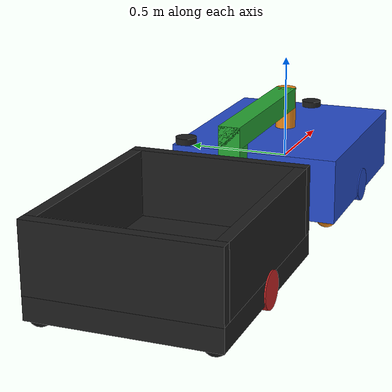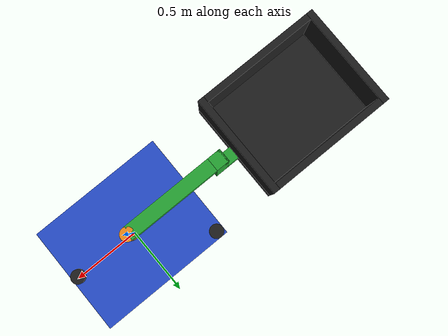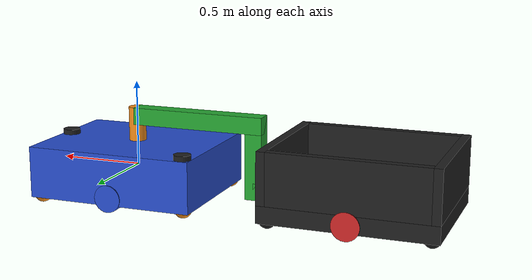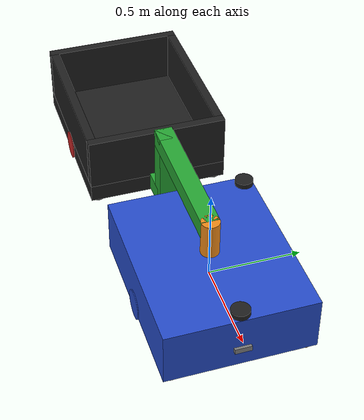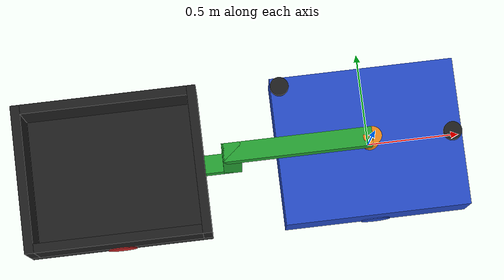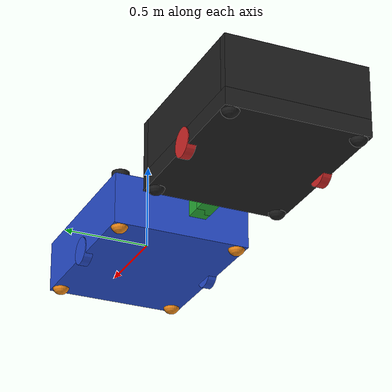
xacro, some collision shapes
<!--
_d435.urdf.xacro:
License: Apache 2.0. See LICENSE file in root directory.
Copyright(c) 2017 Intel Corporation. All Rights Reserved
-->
<?xml version='1.0'?>

<robot name="amr_dd" xmlns:xacro="http://www.ros.org/wiki/xacro">

    <xacro:include filename="$(find amr_dd)/models/materials.xacro" />
    <xacro:include filename="$(find amr_dd)/models/amr_dd.gazebo" />
    <xacro:include filename="$(find amr_dd)/models/macros.xacro" />
    <xacro:include filename="$(find amr_dd)/urdf/_d435.urdf.xacro" />

    <link name="base_footprint"/>

    <joint name="base_joint" type="fixed">
        <parent link="base_footprint"/>
        <child link="chassis"/>
        <origin xyz="0.0 0.0 0.0" rpy="0 0 0"/>
    </joint>

    <link name='chassis'>
        <!-- pose and inertial -->
        <pose>0 0 0.185 0 0 0</pose>
        <inertial>
            <mass value="120"/>
            <origin rpy="0 0 0" xyz="0 0 0.185"/>
            <inertia ixx="0.0395416666667" ixy="0" ixz="0" iyy="0.106208333333" iyz="0" izz="0.106208333333"/>
        </inertial>

        <!-- body -->
        <collision name='chassis_collision'>
            <geometry>
                <box size="1 0.8 0.3"/>
            </geometry>
        </collision>
        <visual name='chassis_visual'>
            <origin rpy="0 0 0" xyz="0 0 0"/>
            <geometry>
                <box size="1 0.8 0.3"/>
            </geometry>
            <material name="blue"/>
        </visual>

        <!-- caster -->
        <xacro:caster name="caster_TL" origin_xyz="0.45 0.35 -0.135"/>
        <xacro:caster name="caster_TR" origin_xyz="0.45 -0.35 -0.135"/>
        <xacro:caster name="caster_BL" origin_xyz="-0.45 0.35 -0.135"/>
        <xacro:caster name="caster_BR" origin_xyz="-0.45 -0.35 -0.135"/>

        <collision name='poll_collision'>
            <origin rpy="0 0 0" xyz="0 0 0.25"/>
            <geometry>
                <cylinder radius="0.05" length="0.2"/>
            </geometry>
        </collision>
        <visual name='poll_visual'>
            <origin rpy="0 0 0" xyz="0 0 0.25"/>
            <geometry>
                <cylinder radius="0.05" length="0.2"/>
            </geometry>
        </visual>

    </link>

    <!-- Hook -->
    <link name="hook">
        <inertial>
            <mass value="0.5"/>
            <origin rpy="0 0 0" xyz="-0.4 0 0.3"/>
            <inertia ixx="0.0395416666667" ixy="0" ixz="0" iyy="0.106208333333" iyz="0" izz="0.106208333333"/>
        </inertial>
        <collision name='hook1_collision'>
            <origin rpy="0 0 0" xyz="-0.4 0 0.3"/>
            <geometry>
                <box size="0.8 0.1 0.1"/>
            </geometry>
        </collision>
        <visual name='hook1_visual'>
            <origin rpy="0 0 0" xyz="-0.4 0 0.3"/>
            <geometry>
                <box size="0.8 0.1 0.1"/>
            </geometry>
        </visual>
        <collision name='hook2_collision'>
            <origin rpy="0 0 0" xyz="-0.75 0 0.1075"/>
            <geometry>
                <box size="0.1 0.1 0.485"/>
            </geometry>
        </collision>
        <visual name='hook2_visual'>
            <origin rpy="0 0 0" xyz="-0.75 0 0.1075"/>
            <geometry>
                <box size="0.1 0.1 0.485"/>
            </geometry>
        </visual>
        <collision name='hook3_collision'>
            <origin rpy="0 0 0" xyz="-0.825 0 -0.085"/>
            <geometry>
                <box size="0.15 0.1 0.1"/>
            </geometry>
        </collision>
        <visual name='hook3_visual'>
            <origin rpy="0 0 0" xyz="-0.825 0 -0.085"/>
            <geometry>
                <box size="0.15 0.1 0.1"/>
            </geometry>
        </visual>
    </link>
    <!-- AMR Wheel -->
    <xacro:link_wheel name="left_wheel" />
    <gazebo reference="left_wheel">
        <mu1>100000.0</mu1>
        <mu2>100000.0</mu2>
        <kp>1000000.0</kp>
        <kd>100.0</kd>
        <minDepth>0.001</minDepth>
        <maxVel>1.0</maxVel>
    </gazebo>
    <xacro:link_wheel name="right_wheel" />
    <gazebo reference="right_wheel">
        <mu1>100000.0</mu1>
        <mu2>100000.0</mu2>
        <kp>1000000.0</kp>
        <kd>100.0</kd>
        <minDepth>0.001</minDepth>
        <maxVel>1.0</maxVel>
    </gazebo>

    <!-- Cart -->
    <link name="cart">
        <inertial>
            <mass value="10"/>
            <origin rpy="0 0 0" xyz="-1.4 0 -0.1"/>
            <inertia ixx="0.0395416666667" ixy="0" ixz="0" iyy="0.106208333333" iyz="0" izz="0.106208333333"/>
        </inertial>

        <!-- body -->
        <collision name='cart_collision'>
            <origin rpy="0 0 0" xyz="-1.4 0 -0.1"/>
            <geometry>
                <box size="1 0.8 0.1"/>
            </geometry>
        </collision>
        <visual name='cart_visual'>
            <origin rpy="0 0 0" xyz="-1.4 0 -0.1"/>
            <geometry>
                <box size="1 0.8 0.1"/>
            </geometry>
        </visual>
        <collision name='wall1_collision'>
            <origin rpy="0 0 0" xyz="-0.925 0 0.1"/>
            <geometry>
                <box size="0.05 0.8 0.3"/>
            </geometry>
        </collision>
        <visual name='wall1_visual'>
            <origin rpy="0 0 0" xyz="-0.925 0 0.1"/>
            <geometry>
                <box size="0.05 0.8 0.3"/>
            </geometry>
        </visual>
        <collision name='wall2_collision'>
            <origin rpy="0 0 0" xyz="-1.875 0 0.1"/>
            <geometry>
                <box size="0.05 0.8 0.3"/>
            </geometry>
        </collision>
        <visual name='wall2_visual'>
            <origin rpy="0 0 0" xyz="-1.875 0 0.1"/>
            <geometry>
                <box size="0.05 0.8 0.3"/>
            </geometry>
        </visual>
        <collision name='wall3_collision'>
            <origin rpy="0 0 0" xyz="-1.4 0.375 0.1"/>
            <geometry>
                <box size="0.9 0.05 0.3"/>
            </geometry>
        </collision>
        <visual name='wall3_visual'>
            <origin rpy="0 0 0" xyz="-1.4 0.375 0.1"/>
            <geometry>
                <box size="0.9 0.05 0.3"/>
            </geometry>
        </visual>
        <collision name='wall4_collision'>
            <origin rpy="0 0 0" xyz="-1.4 -0.375 0.1"/>
            <geometry>
                <box size="0.9 0.05 0.3"/>
            </geometry>
        </collision>
        <visual name='wall4_visual'>
            <origin rpy="0 0 0" xyz="-1.4 -0.375 0.1"/>
            <geometry>
                <box size="0.9 0.05 0.3"/>
            </geometry>
        </visual>

        <!-- caster -->
        <xacro:caster name="cart_caster_TL" origin_xyz="-0.95 0.35 -0.135"/>
        <xacro:caster name="cart_caster_TR" origin_xyz="-0.95 -0.35 -0.135"/>
        <xacro:caster name="cart_caster_BL" origin_xyz="-1.85 0.35 -0.135"/>
        <xacro:caster name="cart_caster_BR" origin_xyz="-1.85 -0.35 -0.135"/>
    </link>
    <!-- Cart Wheel -->
    <xacro:link_wheel name="left_cart_wheel" />
    <gazebo reference="left_cart_wheel">
        <mu1>100000.0</mu1>
        <mu2>100000.0</mu2>
        <kp>1000000.0</kp>
        <kd>100.0</kd>
        <minDepth>0.001</minDepth>
        <maxVel>1.0</maxVel>
    </gazebo>
    <xacro:link_wheel name="right_cart_wheel" />
    <gazebo reference="right_cart_wheel">
        <mu1>100000.0</mu1>
        <mu2>100000.0</mu2>
        <kp>1000000.0</kp>
        <kd>100.0</kd>
        <minDepth>0.001</minDepth>
        <maxVel>1.0</maxVel>
    </gazebo>

    <!-- Sensor -->
    <xacro:laser name="sensor_laser_front"/>
    <xacro:laser name="sensor_laser_back"/>

    <xacro:sensor_d435 name="camera" topics_ns="camera" parent="chassis" publish_pointcloud="true">
        <origin xyz="0.51 0 -0.05" rpy="0 -0.2 0" />
    </xacro:sensor_d435>

    <!-- Joint -->
    <xacro:joint_wheel name="joint_left_wheel" origin_xyz="0 0.38 -0.11" parent="chassis" child="left_wheel"/>
    <xacro:joint_wheel name="joint_right_wheel" origin_xyz="0 -0.38 -0.11" parent="chassis" child="right_wheel"/>
    <joint type="revolute" name="joint_towing">
            <origin rpy="0 0 0" xyz="0 0 0"/>
            <child link="hook"/>
            <parent link="chassis"/>
            <axis rpy="0 0 0" xyz="0 0 1"/>
            <limit effort="10000" velocity="1000" lower="-1.5707" upper="1.5707"/>
            <joint_properties damping="1.0" friction="1.0"/>
        </joint>

    <joint type="fixed" name="joint_hook">
            <origin rpy="0 0 0" xyz="0 0 0"/>
            <child link="cart"/>
            <parent link="hook"/>
            <axis rpy="0 0 0" xyz="0 0 0"/>
        </joint>
    <xacro:joint_wheel name="joint_left_cart_wheel" origin_xyz="-1.4 0.38 -0.11" parent="cart" child="left_cart_wheel"/>
    <xacro:joint_wheel name="joint_right_cart_wheel" origin_xyz="-1.4 -0.38 -0.11" parent="cart" child="right_cart_wheel"/>
    <transmission name="towing_tran">
        <type>transmission_interface/SimpleTransmission</type>
        <joint type="revolute" name="joint_towing">
            <hardwareInterface>hardware_interface/EffortJointInterface</hardwareInterface>
        </joint>
        <actuator name="motor_towing">
            <mechanicalReduction>1</mechanicalReduction>
        </actuator>
    </transmission>
    <joint name="joint_sensor_laser_front" type="fixed">
        <origin xyz="0.45 0 0.165" rpy="0 0 0"/>
        <parent link="chassis"/>
        <child link="sensor_laser_front"/>
    </joint>
    <joint name="joint_sensor_laser_back" type="fixed">
        <origin xyz="-0.45 0.35 0.165" rpy="0 0 3.14"/>
        <parent link="chassis"/>
        <child link="sensor_laser_back"/>
    </joint>
</robot>

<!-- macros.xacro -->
<robot xmlns:xacro="http://www.ros.org/wiki/xacro">
    <!-- Link Wheel -->
    <xacro:macro name="link_wheel" params="name">
        <link name="${name}">
            <inertial>
                <mass value="0.2"/>
                <origin rpy="0 1.5707 1.5707" xyz="0 0 0"/>
                <inertia ixx="0.000526666666667" ixy="0" ixz="0" iyy="0.000526666666667" iyz="0" izz="0.001"/>
            </inertial>
            <collision name="${name}_collision">
                <origin rpy="0 1.5707 1.5707" xyz="0 0 0"/>
                <geometry>
                    <cylinder length="0.05" radius="0.08"/>
                </geometry>
            </collision>
            <visual name="${name}_visual">
                <origin rpy="0 1.5707 1.5707" xyz="0 0 0"/>
                <geometry>
                    <cylinder length="0.05" radius="0.08"/>
                </geometry>
            </visual>
        </link>
    </xacro:macro>
    <!-- Joint Wheel -->
    <xacro:macro name="joint_wheel" params="name parent child origin_xyz">
        <joint type="continuous" name="${name}">
            <origin rpy="0 0 0" xyz="${origin_xyz}"/>
            <child link="${child}"/>
            <parent link="${parent}"/>
            <axis rpy="0 0 0" xyz="0 1 0"/>
            <limit effort="10000" velocity="1000"/>
            <joint_properties damping="1.0" friction="1.0"/>
        </joint>
    </xacro:macro>
    <!-- Caster -->
    <xacro:macro name="caster" params="name origin_xyz">
        <collision name='${name}_collision'>
            <origin rpy="0 0 0" xyz="${origin_xyz}"/>
            <geometry>
                <sphere radius="0.05"/>}
            </geometry>
            <surface>
                <friction>
                    <ode>
                        <mu>0</mu>
                        <mu2>0</mu2>
                        <slip1>1.0</slip1>
                        <slip2>1.0</slip2>
                    </ode>
                </friction>
            </surface>
        </collision>
        <visual name='${name}_visual'>
            <origin rpy="0 0 0" xyz="${origin_xyz}"/>
            <geometry>
                <sphere radius="0.05"/>
            </geometry>
        </visual>
    </xacro:macro>
    <!-- laser -->
    <xacro:macro name="laser" params="name">
        <link name="${name}">
            <inertial>
                <mass value="0.05"/>
                <origin rpy="0 0 0" xyz="0 0 0"/>
                <xacro:cylinder_inertia mass="0.05" l="0.03" r="0.05" />
            </inertial>
            <collision name="${name}_collision">
                <origin rpy="0 0 0" xyz="0 0 0"/>
                <geometry>
                    <cylinder length="0.03" radius="0.05"/>
                </geometry>
            </collision>
            <visual name="${name}_visual">
                <origin rpy="0 0 0" xyz="0 0 0"/>
                <geometry>
                    <cylinder length="0.03" radius="0.05"/>
                </geometry>
            </visual>
        </link>
    </xacro:macro>
    <!-- Inertia -->
    <xacro:macro name="cylinder_inertia" params="mass r l">
        <inertia  ixx="${mass*(3*r*r+l*l)/12}" ixy = "0" ixz = "0"
                    iyy="${mass*(3*r*r+l*l)/12}" iyz = "0"
                    izz="${mass*(r*r)/2}" />
    </xacro:macro>
</robot>

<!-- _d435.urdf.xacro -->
<robot name="sensor_d435" xmlns:xacro="http://ros.org/wiki/xacro">
  <!--File includes-->
  <xacro:include filename="$(find amr_dd)/urdf/_d435.gazebo.xacro"/>

  <xacro:macro name="sensor_d435" params="name:=camera topics_ns:=camera parent *origin publish_pointcloud:=true">
    <xacro:property name="M_PI" value="3.1415926535897931" />

    <!-- The following values are approximate, and the camera node
     publishing TF values with actual calibrated camera extrinsic values -->
    <xacro:property name="d435_cam_depth_to_left_ir_offset" value="0.0"/>
    <xacro:property name="d435_cam_depth_to_right_ir_offset" value="-0.050"/>
    <xacro:property name="d435_cam_depth_to_color_offset" value="0.015"/>

    <!-- The following values model the aluminum peripherial case for the
    D435 camera, with the camera joint represented by the actual
    peripherial camera tripod mount -->
    <xacro:property name="d435_cam_width" value="0.090"/>
    <xacro:property name="d435_cam_height" value="0.025"/>
    <xacro:property name="d435_cam_depth" value="0.02505"/>
    <xacro:property name="d435_cam_mount_from_center_offset" value="0.0149"/>

    <!-- The following offset is relative the the physical D435 camera peripherial
    camera tripod mount -->
    <xacro:property name="d435_cam_depth_px" value="${d435_cam_mount_from_center_offset}"/>
    <xacro:property name="d435_cam_depth_py" value="0.0175"/>
    <xacro:property name="d435_cam_depth_pz" value="${d435_cam_height/2}"/>

    <material name="${name}_aluminum">
    <color rgba="0.5 0.5 0.5 1"/>
    </material>

    <!-- camera body, with origin at bottom screw mount -->
    <joint name="${name}_joint" type="fixed">
      <xacro:insert_block name="origin" />
      <parent link="${parent}"/>
      <child link="${name}_bottom_screw_frame" />
    </joint>
    <link name="${name}_bottom_screw_frame"/>

    <joint name="${name}_link_joint" type="fixed">
      <origin xyz="0 ${d435_cam_depth_py} ${d435_cam_depth_pz}" rpy="0 0 0"/>
      <parent link="${name}_bottom_screw_frame"/>
      <child link="${name}_link" />
    </joint>

    <link name="${name}_link">
      <visual>
      <origin xyz="${d435_cam_mount_from_center_offset} ${-d435_cam_depth_py} 0" rpy="${M_PI/2} 0 ${M_PI/2}"/>
        <geometry>
          <mesh filename="package://amr_dd/meshes/d435.dae" />
        </geometry>
        <material name="${name}_aluminum"/>
      </visual>
      <collision>
        <origin xyz="0 ${-d435_cam_depth_py} 0" rpy="0 0 0"/>
        <geometry>
        <box size="${d435_cam_depth} ${d435_cam_width} ${d435_cam_height}"/>
        </geometry>
      </collision>
      <inertial>
        <!-- The following are not reliable values, and should not be used for modeling -->
        <mass value="0.564" />
        <origin xyz="0 0 0" />
        <inertia ixx="0.003881243" ixy="0.0" ixz="0.0" iyy="0.000498940" iyz="0.0" izz="0.003879257" />
      </inertial>
    </link>

    <!-- camera depth joints and links -->
    <joint name="${name}_depth_joint" type="fixed">
      <origin xyz="0 0 0" rpy="0 0 0"/>
      <parent link="${name}_link"/>
      <child link="${name}_depth_frame" />
    </joint>
    <link name="${name}_depth_frame"/>

    <joint name="${name}_depth_optical_joint" type="fixed">
      <origin xyz="0 0 0" rpy="${-M_PI/2} 0 ${-M_PI/2}" />
      <parent link="${name}_depth_frame" />
      <child link="${name}_depth_optical_frame" />
    </joint>
    <link name="${name}_depth_optical_frame"/>

    <!-- camera left IR joints and links -->
    <joint name="${name}_left_ir_joint" type="fixed">
      <origin xyz="0 ${d435_cam_depth_to_left_ir_offset} 0" rpy="0 0 0" />
      <parent link="${name}_depth_frame" />
      <child link="${name}_left_ir_frame" />
    </joint>
    <link name="${name}_left_ir_frame"/>

    <joint name="${name}_left_ir_optical_joint" type="fixed">
      <origin xyz="0 0 0" rpy="${-M_PI/2} 0 ${-M_PI/2}" />
      <parent link="${name}_left_ir_frame" />
      <child link="${name}_left_ir_optical_frame" />
    </joint>
    <link name="${name}_left_ir_optical_frame"/>

    <!-- camera right IR joints and links -->
    <joint name="${name}_right_ir_joint" type="fixed">
      <origin xyz="0 ${d435_cam_depth_to_right_ir_offset} 0" rpy="0 0 0" />
      <parent link="${name}_depth_frame" />
      <child link="${name}_right_ir_frame" />
    </joint>
    <link name="${name}_right_ir_frame"/>

    <joint name="${name}_right_ir_optical_joint" type="fixed">
      <origin xyz="0 0 0" rpy="${-M_PI/2} 0 ${-M_PI/2}" />
      <parent link="${name}_right_ir_frame" />
      <child link="${name}_right_ir_optical_frame" />
    </joint>
    <link name="${name}_right_ir_optical_frame"/>

    <!-- camera color joints and links -->
    <joint name="${name}_color_joint" type="fixed">
      <origin xyz="0 ${d435_cam_depth_to_color_offset} 0" rpy="0 0 0" />
      <parent link="${name}_depth_frame" />
      <child link="${name}_color_frame" />
    </joint>
    <link name="${name}_color_frame"/>

    <joint name="${name}_color_optical_joint" type="fixed">
      <origin xyz="0 0 0" rpy="${-M_PI/2} 0 ${-M_PI/2}" />
      <parent link="${name}_color_frame" />
      <child link="${name}_color_optical_frame" />
    </joint>
    <link name="${name}_color_optical_frame"/>

    <!-- Realsense Gazebo Plugin -->
    <xacro:gazebo_d435 camera_name="${name}" reference_link="${name}_link" topics_ns="${topics_ns}" depth_optical_frame="${name}_depth_optical_frame" color_optical_frame="${name}_color_optical_frame" infrared1_optical_frame="${name}_left_ir_optical_frame" infrared2_optical_frame="${name}_right_ir_optical_frame" publish_pointcloud="${publish_pointcloud}"/>

  </xacro:macro>
</robot>
